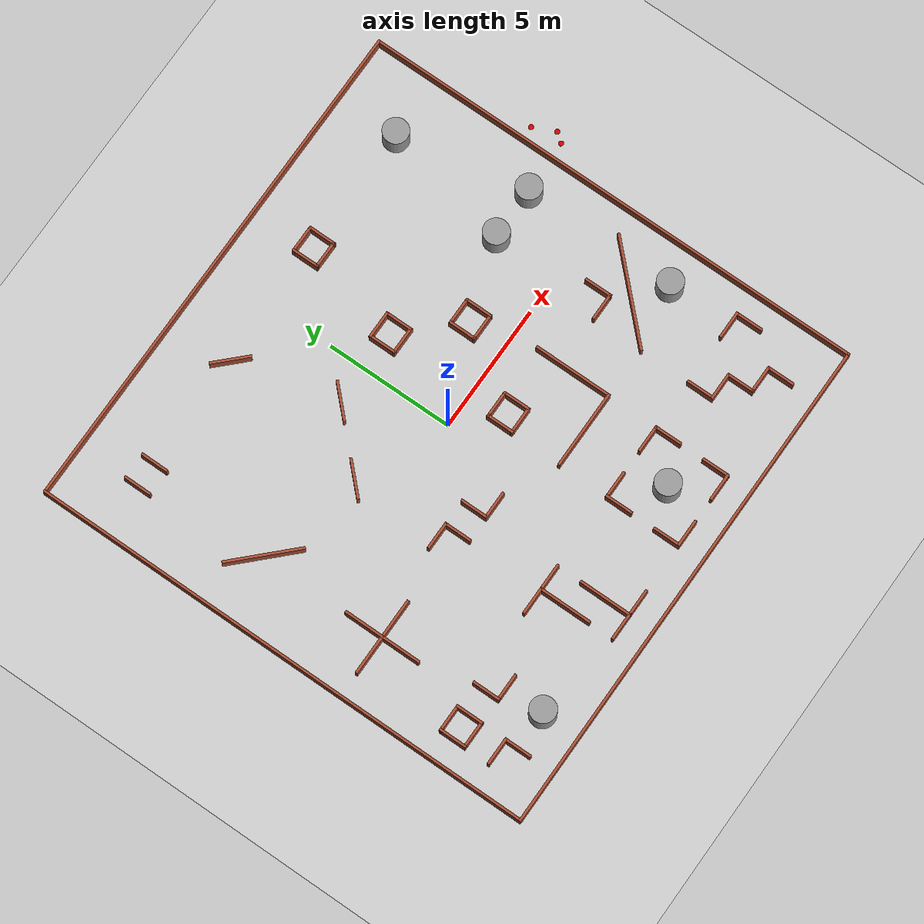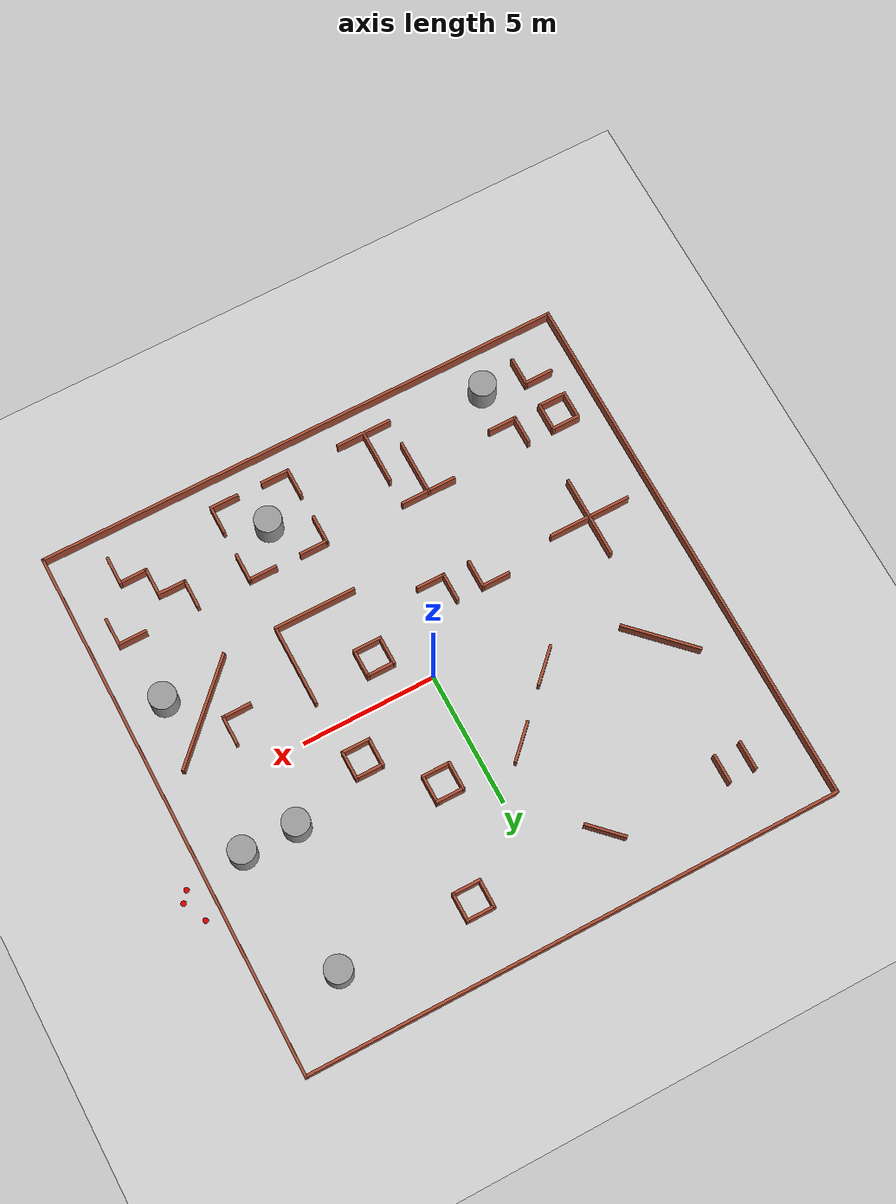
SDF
<sdf version="1.7">
 <world name="default">
  <model name="ground_plane">
   <static>1</static>
   <link name="link">
    <collision name="collision">
     <geometry><plane><normal>0 0 1</normal><size>100 100</size></plane></geometry>
     <surface>
      <contact><collide_bitmask>65535</collide_bitmask></contact>
      <friction><ode><mu>100</mu><mu2>50</mu2></ode></friction>
     </surface>
    </collision>
    <visual name="visual">
     <cast_shadows>0</cast_shadows>
     <geometry><plane><normal>0 0 1</normal><size>100 100</size></plane></geometry>
     <material>
      <script><uri>file://media/materials/scripts/gazebo.material</uri><name>Gazebo/Grey</name></script>
     </material>
    </visual>
   </link>
  </model>
  <model name="cur_mul">
   <link name="Wall_0">
    <collision name="Wall_0_Collision">
     <geometry><box><size>20.1 0.1 0.5</size></box></geometry>
     <pose>0 0 0.25 0 -0 0</pose>
    </collision>
    <visual name="Wall_0_Visual">
     <pose>0 0 0.25 0 -0 0</pose>
     <geometry><box><size>20.1 0.1 0.5</size></box></geometry>
     <material>
      <script><uri>file://media/materials/scripts/gazebo.material</uri><name>Gazebo/Bricks</name></script>
      <ambient>0.760784 0.662745 0.627451 1</ambient>
     </material>
     <meta><layer>0</layer></meta>
    </visual>
    <pose>0 10 0 0 -0 3.14159</pose>
   </link>
   <link name="Wall_1">
    <collision name="Wall_1_Collision">
     <geometry><box><size>20.1 0.1 0.5</size></box></geometry>
     <pose>0 0 0.25 0 -0 0</pose>
    </collision>
    <visual name="Wall_1_Visual">
     <pose>0 0 0.25 0 -0 0</pose>
     <geometry><box><size>20.1 0.1 0.5</size></box></geometry>
     <material>
      <script><uri>file://media/materials/scripts/gazebo.material</uri><name>Gazebo/Bricks</name></script>
      <ambient>0.760784 0.662745 0.627451 1</ambient>
     </material>
     <meta><layer>0</layer></meta>
    </visual>
    <pose>-10 0 0 0 -0 -1.5708</pose>
   </link>
   <link name="Wall_104">
    <collision name="Wall_104_Collision">
     <geometry><box><size>1.1 0.1 0.5</size></box></geometry>
     <pose>0 0 0.25 0 -0 0</pose>
    </collision>
    <visual name="Wall_104_Visual">
     <pose>0 0 0.25 0 -0 0</pose>
     <geometry><box><size>1.1 0.1 0.5</size></box></geometry>
     <material>
      <script><uri>file://media/materials/scripts/gazebo.material</uri><name>Gazebo/Bricks</name></script>
      <ambient>0.760784 0.662745 0.627451 1</ambient>
     </material>
     <meta><layer>0</layer></meta>
    </visual>
    <pose>-9 -6.5 0 0 -0 -1.5708</pose>
   </link>
   <link name="Wall_105">
    <collision name="Wall_105_Collision">
     <geometry><box><size>1.1 0.1 0.5</size></box></geometry>
     <pose>0 0 0.25 0 -0 0</pose>
    </collision>
    <visual name="Wall_105_Visual">
     <pose>0 0 0.25 0 -0 0</pose>
     <geometry><box><size>1.1 0.1 0.5</size></box></geometry>
     <material>
      <script><uri>file://media/materials/scripts/gazebo.material</uri><name>Gazebo/Bricks</name></script>
      <ambient>0.760784 0.662745 0.627451 1</ambient>
     </material>
     <meta><layer>0</layer></meta>
    </visual>
    <pose>-8.5 -7 0 0 -0 0</pose>
   </link>
   <link name="Wall_106">
    <collision name="Wall_106_Collision">
     <geometry><box><size>1.1 0.1 0.5</size></box></geometry>
     <pose>0 0 0.25 0 -0 0</pose>
    </collision>
    <visual name="Wall_106_Visual">
     <pose>0 0 0.25 0 -0 0</pose>
     <geometry><box><size>1.1 0.1 0.5</size></box></geometry>
     <material>
      <script><uri>file://media/materials/scripts/gazebo.material</uri><name>Gazebo/Bricks</name></script>
      <ambient>0.760784 0.662745 0.627451 1</ambient>
     </material>
     <meta><layer>0</layer></meta>
    </visual>
    <pose>-8 -6.5 0 0 -0 1.5708</pose>
   </link>
   <link name="Wall_107">
    <collision name="Wall_107_Collision">
     <geometry><box><size>1.1 0.1 0.5</size></box></geometry>
     <pose>0 0 0.25 0 -0 0</pose>
    </collision>
    <visual name="Wall_107_Visual">
     <pose>0 0 0.25 0 -0 0</pose>
     <geometry><box><size>1.1 0.1 0.5</size></box></geometry>
     <material>
      <script><uri>file://media/materials/scripts/gazebo.material</uri><name>Gazebo/Bricks</name></script>
      <ambient>0.760784 0.662745 0.627451 1</ambient>
     </material>
     <meta><layer>0</layer></meta>
    </visual>
    <pose>-8.5 -6 0 0 -0 3.14159</pose>
   </link>
   <link name="Wall_109">
    <collision name="Wall_109_Collision">
     <geometry><box><size>1.1 0.1 0.5</size></box></geometry>
     <pose>0 0 0.25 0 -0 0</pose>
    </collision>
    <visual name="Wall_109_Visual">
     <pose>0 0 0.25 0 -0 0</pose>
     <geometry><box><size>1.1 0.1 0.5</size></box></geometry>
     <material>
      <script><uri>file://media/materials/scripts/gazebo.material</uri><name>Gazebo/Bricks</name></script>
      <ambient>0.760784 0.662745 0.627451 1</ambient>
     </material>
     <meta><layer>0</layer></meta>
    </visual>
    <pose>-7 -6.5 0 0 -0 -1.5708</pose>
   </link>
   <link name="Wall_110">
    <collision name="Wall_110_Collision">
     <geometry><box><size>1.1 0.1 0.5</size></box></geometry>
     <pose>0 0 0.25 0 -0 0</pose>
    </collision>
    <visual name="Wall_110_Visual">
     <pose>0 0 0.25 0 -0 0</pose>
     <geometry><box><size>1.1 0.1 0.5</size></box></geometry>
     <material>
      <script><uri>file://media/materials/scripts/gazebo.material</uri><name>Gazebo/Bricks</name></script>
      <ambient>0.760784 0.662745 0.627451 1</ambient>
     </material>
     <meta><layer>0</layer></meta>
    </visual>
    <pose>-6.5 -7 0 0 -0 0</pose>
   </link>
   <link name="Wall_112">
    <collision name="Wall_112_Collision">
     <geometry><box><size>1.1 0.1 0.5</size></box></geometry>
     <pose>0 0 0.25 0 -0 0</pose>
    </collision>
    <visual name="Wall_112_Visual">
     <pose>0 0 0.25 0 -0 0</pose>
     <geometry><box><size>1.1 0.1 0.5</size></box></geometry>
     <material>
      <script><uri>file://media/materials/scripts/gazebo.material</uri><name>Gazebo/Bricks</name></script>
      <ambient>0.760784 0.662745 0.627451 1</ambient>
     </material>
     <meta><layer>0</layer></meta>
    </visual>
    <pose>-8.5 -8 0 0 -0 0</pose>
   </link>
   <link name="Wall_113">
    <collision name="Wall_113_Collision">
     <geometry><box><size>1.1 0.1 0.5</size></box></geometry>
     <pose>0 0 0.25 0 -0 0</pose>
    </collision>
    <visual name="Wall_113_Visual">
     <pose>0 0 0.25 0 -0 0</pose>
     <geometry><box><size>1.1 0.1 0.5</size></box></geometry>
     <material>
      <script><uri>file://media/materials/scripts/gazebo.material</uri><name>Gazebo/Bricks</name></script>
      <ambient>0.760784 0.662745 0.627451 1</ambient>
     </material>
     <meta><layer>0</layer></meta>
    </visual>
    <pose>-8 -8.5 0 0 -0 -1.5708</pose>
   </link>
   <link name="Wall_115">
    <collision name="Wall_115_Collision">
     <geometry><box><size>2.1 0.1 0.5</size></box></geometry>
     <pose>0 0 0.25 0 -0 0</pose>
    </collision>
    <visual name="Wall_115_Visual">
     <pose>0 0 0.25 0 -0 0</pose>
     <geometry><box><size>2.1 0.1 0.5</size></box></geometry>
     <material>
      <script><uri>file://media/materials/scripts/gazebo.material</uri><name>Gazebo/Bricks</name></script>
      <ambient>0.760784 0.662745 0.627451 1</ambient>
     </material>
     <meta><layer>0</layer></meta>
    </visual>
    <pose>-3 -6 0 0 -0 0</pose>
   </link>
   <link name="Wall_117">
    <collision name="Wall_117_Collision">
     <geometry><box><size>2.1 0.1 0.5</size></box></geometry>
     <pose>0 0 0.25 0 -0 0</pose>
    </collision>
    <visual name="Wall_117_Visual">
     <pose>0 0 0.25 0 -0 0</pose>
     <geometry><box><size>2.1 0.1 0.5</size></box></geometry>
     <material>
      <script><uri>file://media/materials/scripts/gazebo.material</uri><name>Gazebo/Bricks</name></script>
      <ambient>0.760784 0.662745 0.627451 1</ambient>
     </material>
     <meta><layer>0</layer></meta>
    </visual>
    <pose>-3 -7 0 0 -0 -1.5708</pose>
   </link>
   <link name="Wall_119">
    <collision name="Wall_119_Collision">
     <geometry><box><size>2.1 0.1 0.5</size></box></geometry>
     <pose>0 0 0.25 0 -0 0</pose>
    </collision>
    <visual name="Wall_119_Visual">
     <pose>0 0 0.25 0 -0 0</pose>
     <geometry><box><size>2.1 0.1 0.5</size></box></geometry>
     <material>
      <script><uri>file://media/materials/scripts/gazebo.material</uri><name>Gazebo/Bricks</name></script>
      <ambient>0.760784 0.662745 0.627451 1</ambient>
     </material>
     <meta><layer>0</layer></meta>
    </visual>
    <pose>-2 -8 0 0 -0 -1.5708</pose>
   </link>
   <link name="Wall_121">
    <collision name="Wall_121_Collision">
     <geometry><box><size>2.1 0.1 0.5</size></box></geometry>
     <pose>0 0 0.25 0 -0 0</pose>
    </collision>
    <visual name="Wall_121_Visual">
     <pose>0 0 0.25 0 -0 0</pose>
     <geometry><box><size>2.1 0.1 0.5</size></box></geometry>
     <material>
      <script><uri>file://media/materials/scripts/gazebo.material</uri><name>Gazebo/Bricks</name></script>
      <ambient>0.760784 0.662745 0.627451 1</ambient>
     </material>
     <meta><layer>0</layer></meta>
    </visual>
    <pose>-2 -9 0 0 -0 0</pose>
   </link>
   <link name="Wall_128">
    <collision name="Wall_128_Collision">
     <geometry><box><size>1.1 0.1 0.5</size></box></geometry>
     <pose>0 0 0.25 0 -0 0</pose>
    </collision>
    <visual name="Wall_128_Visual">
     <pose>0 0 0.25 0 -0 0</pose>
     <geometry><box><size>1.1 0.1 0.5</size></box></geometry>
     <material>
      <script><uri>file://media/materials/scripts/gazebo.material</uri><name>Gazebo/Bricks</name></script>
      <ambient>0.760784 0.662745 0.627451 1</ambient>
     </material>
     <meta><layer>0</layer></meta>
    </visual>
    <pose>6 -6.5 0 0 -0 -1.5708</pose>
   </link>
   <link name="Wall_129">
    <collision name="Wall_129_Collision">
     <geometry><box><size>1.1 0.1 0.5</size></box></geometry>
     <pose>0 0 0.25 0 -0 0</pose>
    </collision>
    <visual name="Wall_129_Visual">
     <pose>0 0 0.25 0 -0 0</pose>
     <geometry><box><size>1.1 0.1 0.5</size></box></geometry>
     <material>
      <script><uri>file://media/materials/scripts/gazebo.material</uri><name>Gazebo/Bricks</name></script>
      <ambient>0.760784 0.662745 0.627451 1</ambient>
     </material>
     <meta><layer>0</layer></meta>
    </visual>
    <pose>6.5 -7 0 0 -0 0</pose>
   </link>
   <link name="Wall_130">
    <collision name="Wall_130_Collision">
     <geometry><box><size>1.1 0.1 0.5</size></box></geometry>
     <pose>0 0 0.25 0 -0 0</pose>
    </collision>
    <visual name="Wall_130_Visual">
     <pose>0 0 0.25 0 -0 0</pose>
     <geometry><box><size>1.1 0.1 0.5</size></box></geometry>
     <material>
      <script><uri>file://media/materials/scripts/gazebo.material</uri><name>Gazebo/Bricks</name></script>
      <ambient>0.760784 0.662745 0.627451 1</ambient>
     </material>
     <meta><layer>0</layer></meta>
    </visual>
    <pose>7 -7.5 0 0 -0 -1.5708</pose>
   </link>
   <link name="Wall_131">
    <collision name="Wall_131_Collision">
     <geometry><box><size>1.1 0.1 0.5</size></box></geometry>
     <pose>0 0 0.25 0 -0 0</pose>
    </collision>
    <visual name="Wall_131_Visual">
     <pose>0 0 0.25 0 -0 0</pose>
     <geometry><box><size>1.1 0.1 0.5</size></box></geometry>
     <material>
      <script><uri>file://media/materials/scripts/gazebo.material</uri><name>Gazebo/Bricks</name></script>
      <ambient>0.760784 0.662745 0.627451 1</ambient>
     </material>
     <meta><layer>0</layer></meta>
    </visual>
    <pose>7.5 -8 0 0 -0 0</pose>
   </link>
   <link name="Wall_132">
    <collision name="Wall_132_Collision">
     <geometry><box><size>1.1 0.1 0.5</size></box></geometry>
     <pose>0 0 0.25 0 -0 0</pose>
    </collision>
    <visual name="Wall_132_Visual">
     <pose>0 0 0.25 0 -0 0</pose>
     <geometry><box><size>1.1 0.1 0.5</size></box></geometry>
     <material>
      <script><uri>file://media/materials/scripts/gazebo.material</uri><name>Gazebo/Bricks</name></script>
      <ambient>0.760784 0.662745 0.627451 1</ambient>
     </material>
     <meta><layer>0</layer></meta>
    </visual>
    <pose>8 -8.5 0 0 -0 -1.5708</pose>
   </link>
   <link name="Wall_134">
    <collision name="Wall_134_Collision">
     <geometry><box><size>1.1 0.1 0.5</size></box></geometry>
     <pose>0 0 0.25 0 -0 0</pose>
    </collision>
    <visual name="Wall_134_Visual">
     <pose>0 0 0.25 0 -0 0</pose>
     <geometry><box><size>1.1 0.1 0.5</size></box></geometry>
     <material>
      <script><uri>file://media/materials/scripts/gazebo.material</uri><name>Gazebo/Bricks</name></script>
      <ambient>0.760784 0.662745 0.627451 1</ambient>
     </material>
     <meta><layer>0</layer></meta>
    </visual>
    <pose>8.5 -6 0 0 -0 0</pose>
   </link>
   <link name="Wall_135">
    <collision name="Wall_135_Collision">
     <geometry><box><size>1.1 0.1 0.5</size></box></geometry>
     <pose>0 0 0.25 0 -0 0</pose>
    </collision>
    <visual name="Wall_135_Visual">
     <pose>0 0 0.25 0 -0 0</pose>
     <geometry><box><size>1.1 0.1 0.5</size></box></geometry>
     <material>
      <script><uri>file://media/materials/scripts/gazebo.material</uri><name>Gazebo/Bricks</name></script>
      <ambient>0.760784 0.662745 0.627451 1</ambient>
     </material>
     <meta><layer>0</layer></meta>
    </visual>
    <pose>9 -6.5 0 0 -0 -1.5708</pose>
   </link>
   <link name="Wall_138">
    <collision name="Wall_138_Collision">
     <geometry><box><size>1.1 0.1 0.5</size></box></geometry>
     <pose>0 0 0.25 0 -0 0</pose>
    </collision>
    <visual name="Wall_138_Visual">
     <pose>0 0 0.25 0 -0 0</pose>
     <geometry><box><size>1.1 0.1 0.5</size></box></geometry>
     <material>
      <script><uri>file://media/materials/scripts/gazebo.material</uri><name>Gazebo/Bricks</name></script>
      <ambient>0.760784 0.662745 0.627451 1</ambient>
     </material>
     <meta><layer>0</layer></meta>
    </visual>
    <pose>1 -6.5 0 0 -0 1.5708</pose>
   </link>
   <link name="Wall_139">
    <collision name="Wall_139_Collision">
     <geometry><box><size>1.1 0.1 0.5</size></box></geometry>
     <pose>0 0 0.25 0 -0 0</pose>
    </collision>
    <visual name="Wall_139_Visual">
     <pose>0 0 0.25 0 -0 0</pose>
     <geometry><box><size>1.1 0.1 0.5</size></box></geometry>
     <material>
      <script><uri>file://media/materials/scripts/gazebo.material</uri><name>Gazebo/Bricks</name></script>
      <ambient>0.760784 0.662745 0.627451 1</ambient>
     </material>
     <meta><layer>0</layer></meta>
    </visual>
    <pose>1.5 -6 0 0 -0 0</pose>
   </link>
   <link name="Wall_141">
    <collision name="Wall_141_Collision">
     <geometry><box><size>1.1 0.1 0.5</size></box></geometry>
     <pose>0 0 0.25 0 -0 0</pose>
    </collision>
    <visual name="Wall_141_Visual">
     <pose>0 0 0.25 0 -0 0</pose>
     <geometry><box><size>1.1 0.1 0.5</size></box></geometry>
     <material>
      <script><uri>file://media/materials/scripts/gazebo.material</uri><name>Gazebo/Bricks</name></script>
      <ambient>0.760784 0.662745 0.627451 1</ambient>
     </material>
     <meta><layer>0</layer></meta>
    </visual>
    <pose>3.5 -6 0 0 -0 0</pose>
   </link>
   <link name="Wall_142">
    <collision name="Wall_142_Collision">
     <geometry><box><size>1.1 0.1 0.5</size></box></geometry>
     <pose>0 0 0.25 0 -0 0</pose>
    </collision>
    <visual name="Wall_142_Visual">
     <pose>0 0 0.25 0 -0 0</pose>
     <geometry><box><size>1.1 0.1 0.5</size></box></geometry>
     <material>
      <script><uri>file://media/materials/scripts/gazebo.material</uri><name>Gazebo/Bricks</name></script>
      <ambient>0.760784 0.662745 0.627451 1</ambient>
     </material>
     <meta><layer>0</layer></meta>
    </visual>
    <pose>4 -6.5 0 0 -0 -1.5708</pose>
   </link>
   <link name="Wall_144">
    <collision name="Wall_144_Collision">
     <geometry><box><size>1.1 0.1 0.5</size></box></geometry>
     <pose>0 0 0.25 0 -0 0</pose>
    </collision>
    <visual name="Wall_144_Visual">
     <pose>0 0 0.25 0 -0 0</pose>
     <geometry><box><size>1.1 0.1 0.5</size></box></geometry>
     <material>
      <script><uri>file://media/materials/scripts/gazebo.material</uri><name>Gazebo/Bricks</name></script>
      <ambient>0.760784 0.662745 0.627451 1</ambient>
     </material>
     <meta><layer>0</layer></meta>
    </visual>
    <pose>1 -8.5 0 0 -0 -1.5708</pose>
   </link>
   <link name="Wall_145">
    <collision name="Wall_145_Collision">
     <geometry><box><size>1.1 0.1 0.5</size></box></geometry>
     <pose>0 0 0.25 0 -0 0</pose>
    </collision>
    <visual name="Wall_145_Visual">
     <pose>0 0 0.25 0 -0 0</pose>
     <geometry><box><size>1.1 0.1 0.5</size></box></geometry>
     <material>
      <script><uri>file://media/materials/scripts/gazebo.material</uri><name>Gazebo/Bricks</name></script>
      <ambient>0.760784 0.662745 0.627451 1</ambient>
     </material>
     <meta><layer>0</layer></meta>
    </visual>
    <pose>1.5 -9 0 0 -0 0</pose>
   </link>
   <link name="Wall_147">
    <collision name="Wall_147_Collision">
     <geometry><box><size>1.1 0.1 0.5</size></box></geometry>
     <pose>0 0 0.25 0 -0 0</pose>
    </collision>
    <visual name="Wall_147_Visual">
     <pose>0 0 0.25 0 -0 0</pose>
     <geometry><box><size>1.1 0.1 0.5</size></box></geometry>
     <material>
      <script><uri>file://media/materials/scripts/gazebo.material</uri><name>Gazebo/Bricks</name></script>
      <ambient>0.760784 0.662745 0.627451 1</ambient>
     </material>
     <meta><layer>0</layer></meta>
    </visual>
    <pose>4 -8.5 0 0 -0 -1.5708</pose>
   </link>
   <link name="Wall_148">
    <collision name="Wall_148_Collision">
     <geometry><box><size>1.1 0.1 0.5</size></box></geometry>
     <pose>0 0 0.25 0 -0 0</pose>
    </collision>
    <visual name="Wall_148_Visual">
     <pose>0 0 0.25 0 -0 0</pose>
     <geometry><box><size>1.1 0.1 0.5</size></box></geometry>
     <material>
      <script><uri>file://media/materials/scripts/gazebo.material</uri><name>Gazebo/Bricks</name></script>
      <ambient>0.760784 0.662745 0.627451 1</ambient>
     </material>
     <meta><layer>0</layer></meta>
    </visual>
    <pose>3.5 -9 0 0 -0 3.14159</pose>
   </link>
   <link name="Wall_151">
    <collision name="Wall_151_Collision">
     <geometry><box><size>4.34264 0.1 0.5</size></box></geometry>
     <pose>0 0 0.25 0 -0 0</pose>
    </collision>
    <visual name="Wall_151_Visual">
     <pose>0 0 0.25 0 -0 0</pose>
     <geometry><box><size>4.34264 0.1 0.5</size></box></geometry>
     <material>
      <script><uri>file://media/materials/scripts/gazebo.material</uri><name>Gazebo/Bricks</name></script>
      <ambient>0.760784 0.662745 0.627451 1</ambient>
     </material>
     <meta><layer>0</layer></meta>
    </visual>
    <pose>7.5 -2.5 0 0 -0 0.785398</pose>
   </link>
   <link name="Wall_153">
    <collision name="Wall_153_Collision">
     <geometry><box><size>1.1 0.1 0.5</size></box></geometry>
     <pose>0 0 0.25 0 -0 0</pose>
    </collision>
    <visual name="Wall_153_Visual">
     <pose>0 0 0.25 0 -0 0</pose>
     <geometry><box><size>1.1 0.1 0.5</size></box></geometry>
     <material>
      <script><uri>file://media/materials/scripts/gazebo.material</uri><name>Gazebo/Bricks</name></script>
      <ambient>0.760784 0.662745 0.627451 1</ambient>
     </material>
     <meta><layer>0</layer></meta>
    </visual>
    <pose>7 -1.5 0 0 -0 -1.5708</pose>
   </link>
   <link name="Wall_154">
    <collision name="Wall_154_Collision">
     <geometry><box><size>1.1 0.1 0.5</size></box></geometry>
     <pose>0 0 0.25 0 -0 0</pose>
    </collision>
    <visual name="Wall_154_Visual">
     <pose>0 0 0.25 0 -0 0</pose>
     <geometry><box><size>1.1 0.1 0.5</size></box></geometry>
     <material>
      <script><uri>file://media/materials/scripts/gazebo.material</uri><name>Gazebo/Bricks</name></script>
      <ambient>0.760784 0.662745 0.627451 1</ambient>
     </material>
     <meta><layer>0</layer></meta>
    </visual>
    <pose>6.5 -2 0 0 -0 3.14159</pose>
   </link>
   <link name="Wall_156">
    <collision name="Wall_156_Collision">
     <geometry><box><size>3.1 0.1 0.5</size></box></geometry>
     <pose>0 0 0.25 0 -0 0</pose>
    </collision>
    <visual name="Wall_156_Visual">
     <pose>0 0 0.25 0 -0 0</pose>
     <geometry><box><size>3.1 0.1 0.5</size></box></geometry>
     <material>
      <script><uri>file://media/materials/scripts/gazebo.material</uri><name>Gazebo/Bricks</name></script>
      <ambient>0.760784 0.662745 0.627451 1</ambient>
     </material>
     <meta><layer>0</layer></meta>
    </visual>
    <pose>2.5 -4 0 0 -0 0</pose>
   </link>
   <link name="Wall_157">
    <collision name="Wall_157_Collision">
     <geometry><box><size>3.1 0.1 0.5</size></box></geometry>
     <pose>0 0 0.25 0 -0 0</pose>
    </collision>
    <visual name="Wall_157_Visual">
     <pose>0 0 0.25 0 -0 0</pose>
     <geometry><box><size>3.1 0.1 0.5</size></box></geometry>
     <material>
      <script><uri>file://media/materials/scripts/gazebo.material</uri><name>Gazebo/Bricks</name></script>
      <ambient>0.760784 0.662745 0.627451 1</ambient>
     </material>
     <meta><layer>0</layer></meta>
    </visual>
    <pose>4 -2.5 0 0 -0 1.5708</pose>
   </link>
   <link name="Wall_2">
    <collision name="Wall_2_Collision">
     <geometry><box><size>20.1 0.1 0.5</size></box></geometry>
     <pose>0 0 0.25 0 -0 0</pose>
    </collision>
    <visual name="Wall_2_Visual">
     <pose>0 0 0.25 0 -0 0</pose>
     <geometry><box><size>20.1 0.1 0.5</size></box></geometry>
     <material>
      <script><uri>file://media/materials/scripts/gazebo.material</uri><name>Gazebo/Bricks</name></script>
      <ambient>0.760784 0.662745 0.627451 1</ambient>
     </material>
     <meta><layer>0</layer></meta>
    </visual>
    <pose>0 -10 0 0 -0 0</pose>
   </link>
   <link name="Wall_3">
    <collision name="Wall_3_Collision">
     <geometry><box><size>20.1 0.1 0.5</size></box></geometry>
     <pose>0 0 0.25 0 -0 0</pose>
    </collision>
    <visual name="Wall_3_Visual">
     <pose>0 0 0.25 0 -0 0</pose>
     <geometry><box><size>20.1 0.1 0.5</size></box></geometry>
     <material>
      <script><uri>file://media/materials/scripts/gazebo.material</uri><name>Gazebo/Bricks</name></script>
      <ambient>0.760784 0.662745 0.627451 1</ambient>
     </material>
     <meta><layer>0</layer></meta>
    </visual>
    <pose>10 0 0 0 -0 1.5708</pose>
   </link>
   <link name="Wall_45">
    <collision name="Wall_45_Collision">
     <geometry><box><size>1.1 0.1 0.5</size></box></geometry>
     <pose>0 0 0.25 0 -0 0</pose>
    </collision>
    <visual name="Wall_45_Visual">
     <pose>0 0 0.25 0 -0 0</pose>
     <geometry><box><size>1.1 0.1 0.5</size></box></geometry>
     <material>
      <script><uri>file://media/materials/scripts/gazebo.material</uri><name>Gazebo/Bricks</name></script>
      <ambient>0.760784 0.662745 0.627451 1</ambient>
     </material>
     <meta><layer>0</layer></meta>
    </visual>
    <pose>-8 7.5 0 0 -0 -1.5708</pose>
   </link>
   <link name="Wall_47">
    <collision name="Wall_47_Collision">
     <geometry><box><size>1.1 0.1 0.5</size></box></geometry>
     <pose>0 0 0.25 0 -0 0</pose>
    </collision>
    <visual name="Wall_47_Visual">
     <pose>0 0 0.25 0 -0 0</pose>
     <geometry><box><size>1.1 0.1 0.5</size></box></geometry>
     <material>
      <script><uri>file://media/materials/scripts/gazebo.material</uri><name>Gazebo/Bricks</name></script>
      <ambient>0.760784 0.662745 0.627451 1</ambient>
     </material>
     <meta><layer>0</layer></meta>
    </visual>
    <pose>-7 7.5 0 0 -0 -1.5708</pose>
   </link>
   <link name="Wall_49">
    <collision name="Wall_49_Collision">
     <geometry><box><size>1.51421 0.1 0.5</size></box></geometry>
     <pose>0 0 0.25 0 -0 0</pose>
    </collision>
    <visual name="Wall_49_Visual">
     <pose>0 0 0.25 0 -0 0</pose>
     <geometry><box><size>1.51421 0.1 0.5</size></box></geometry>
     <material>
      <script><uri>file://media/materials/scripts/gazebo.material</uri><name>Gazebo/Bricks</name></script>
      <ambient>0.760784 0.662745 0.627451 1</ambient>
     </material>
     <meta><layer>0</layer></meta>
    </visual>
    <pose>-2.5 7.5 0 0 -0 -0.785398</pose>
   </link>
   <link name="Wall_51">
    <collision name="Wall_51_Collision">
     <geometry><box><size>1.1 0.1 0.5</size></box></geometry>
     <pose>0 0 0.25 0 -0 0</pose>
    </collision>
    <visual name="Wall_51_Visual">
     <pose>0 0 0.25 0 -0 0</pose>
     <geometry><box><size>1.1 0.1 0.5</size></box></geometry>
     <material>
      <script><uri>file://media/materials/scripts/gazebo.material</uri><name>Gazebo/Bricks</name></script>
      <ambient>0.760784 0.662745 0.627451 1</ambient>
     </material>
     <meta><layer>0</layer></meta>
    </visual>
    <pose>2.5 7 0 0 -0 0</pose>
   </link>
   <link name="Wall_52">
    <collision name="Wall_52_Collision">
     <geometry><box><size>1.1 0.1 0.5</size></box></geometry>
     <pose>0 0 0.25 0 -0 0</pose>
    </collision>
    <visual name="Wall_52_Visual">
     <pose>0 0 0.25 0 -0 0</pose>
     <geometry><box><size>1.1 0.1 0.5</size></box></geometry>
     <material>
      <script><uri>file://media/materials/scripts/gazebo.material</uri><name>Gazebo/Bricks</name></script>
      <ambient>0.760784 0.662745 0.627451 1</ambient>
     </material>
     <meta><layer>0</layer></meta>
    </visual>
    <pose>3 7.5 0 0 -0 1.5708</pose>
   </link>
   <link name="Wall_53">
    <collision name="Wall_53_Collision">
     <geometry><box><size>1.1 0.1 0.5</size></box></geometry>
     <pose>0 0 0.25 0 -0 0</pose>
    </collision>
    <visual name="Wall_53_Visual">
     <pose>0 0 0.25 0 -0 0</pose>
     <geometry><box><size>1.1 0.1 0.5</size></box></geometry>
     <material>
      <script><uri>file://media/materials/scripts/gazebo.material</uri><name>Gazebo/Bricks</name></script>
      <ambient>0.760784 0.662745 0.627451 1</ambient>
     </material>
     <meta><layer>0</layer></meta>
    </visual>
    <pose>2.5 8 0 0 -0 3.14159</pose>
   </link>
   <link name="Wall_54">
    <collision name="Wall_54_Collision">
     <geometry><box><size>1.1 0.1 0.5</size></box></geometry>
     <pose>0 0 0.25 0 -0 0</pose>
    </collision>
    <visual name="Wall_54_Visual">
     <pose>0 0 0.25 0 -0 0</pose>
     <geometry><box><size>1.1 0.1 0.5</size></box></geometry>
     <material>
      <script><uri>file://media/materials/scripts/gazebo.material</uri><name>Gazebo/Bricks</name></script>
      <ambient>0.760784 0.662745 0.627451 1</ambient>
     </material>
     <meta><layer>0</layer></meta>
    </visual>
    <pose>2 7.5 0 0 -0 -1.5708</pose>
   </link>
   <link name="Wall_56">
    <collision name="Wall_56_Collision">
     <geometry><box><size>2.92843 0.1 0.5</size></box></geometry>
     <pose>0 0 0.25 0 -0 0</pose>
    </collision>
    <visual name="Wall_56_Visual">
     <pose>0 0 0.25 0 -0 0</pose>
     <geometry><box><size>2.92843 0.1 0.5</size></box></geometry>
     <material>
      <script><uri>file://media/materials/scripts/gazebo.material</uri><name>Gazebo/Bricks</name></script>
      <ambient>0.760784 0.662745 0.627451 1</ambient>
     </material>
     <meta><layer>0</layer></meta>
    </visual>
    <pose>-7.5 2.5 0 0 -0 -0.785398</pose>
   </link>
   <link name="Wall_58">
    <collision name="Wall_58_Collision">
     <geometry><box><size>1.51421 0.1 0.5</size></box></geometry>
     <pose>0 0 0.25 0 -0 0</pose>
    </collision>
    <visual name="Wall_58_Visual">
     <pose>0 0 0.25 0 -0 0</pose>
     <geometry><box><size>1.51421 0.1 0.5</size></box></geometry>
     <material>
      <script><uri>file://media/materials/scripts/gazebo.material</uri><name>Gazebo/Bricks</name></script>
      <ambient>0.760784 0.662745 0.627451 1</ambient>
     </material>
     <meta><layer>0</layer></meta>
    </visual>
    <pose>-1.5 3.5 0 0 -0 0.785398</pose>
   </link>
   <link name="Wall_60">
    <collision name="Wall_60_Collision">
     <geometry><box><size>1.51421 0.1 0.5</size></box></geometry>
     <pose>0 0 0.25 0 -0 0</pose>
    </collision>
    <visual name="Wall_60_Visual">
     <pose>0 0 0.25 0 -0 0</pose>
     <geometry><box><size>1.51421 0.1 0.5</size></box></geometry>
     <material>
      <script><uri>file://media/materials/scripts/gazebo.material</uri><name>Gazebo/Bricks</name></script>
      <ambient>0.760784 0.662745 0.627451 1</ambient>
     </material>
     <meta><layer>0</layer></meta>
    </visual>
    <pose>-3.5 1.5 0 0 -0 0.785398</pose>
   </link>
   <link name="Wall_62">
    <collision name="Wall_62_Collision">
     <geometry><box><size>1.1 0.1 0.5</size></box></geometry>
     <pose>0 0 0.25 0 -0 0</pose>
    </collision>
    <visual name="Wall_62_Visual">
     <pose>0 0 0.25 0 -0 0</pose>
     <geometry><box><size>1.1 0.1 0.5</size></box></geometry>
     <material>
      <script><uri>file://media/materials/scripts/gazebo.material</uri><name>Gazebo/Bricks</name></script>
      <ambient>0.760784 0.662745 0.627451 1</ambient>
     </material>
     <meta><layer>0</layer></meta>
    </visual>
    <pose>2 3.5 0 0 -0 -1.5708</pose>
   </link>
   <link name="Wall_63">
    <collision name="Wall_63_Collision">
     <geometry><box><size>1.1 0.1 0.5</size></box></geometry>
     <pose>0 0 0.25 0 -0 0</pose>
    </collision>
    <visual name="Wall_63_Visual">
     <pose>0 0 0.25 0 -0 0</pose>
     <geometry><box><size>1.1 0.1 0.5</size></box></geometry>
     <material>
      <script><uri>file://media/materials/scripts/gazebo.material</uri><name>Gazebo/Bricks</name></script>
      <ambient>0.760784 0.662745 0.627451 1</ambient>
     </material>
     <meta><layer>0</layer></meta>
    </visual>
    <pose>1.5 3 0 0 -0 3.14159</pose>
   </link>
   <link name="Wall_64">
    <collision name="Wall_64_Collision">
     <geometry><box><size>1.1 0.1 0.5</size></box></geometry>
     <pose>0 0 0.25 0 -0 0</pose>
    </collision>
    <visual name="Wall_64_Visual">
     <pose>0 0 0.25 0 -0 0</pose>
     <geometry><box><size>1.1 0.1 0.5</size></box></geometry>
     <material>
      <script><uri>file://media/materials/scripts/gazebo.material</uri><name>Gazebo/Bricks</name></script>
      <ambient>0.760784 0.662745 0.627451 1</ambient>
     </material>
     <meta><layer>0</layer></meta>
    </visual>
    <pose>1 3.5 0 0 -0 1.5708</pose>
   </link>
   <link name="Wall_65">
    <collision name="Wall_65_Collision">
     <geometry><box><size>1.1 0.1 0.5</size></box></geometry>
     <pose>0 0 0.25 0 -0 0</pose>
    </collision>
    <visual name="Wall_65_Visual">
     <pose>0 0 0.25 0 -0 0</pose>
     <geometry><box><size>1.1 0.1 0.5</size></box></geometry>
     <material>
      <script><uri>file://media/materials/scripts/gazebo.material</uri><name>Gazebo/Bricks</name></script>
      <ambient>0.760784 0.662745 0.627451 1</ambient>
     </material>
     <meta><layer>0</layer></meta>
    </visual>
    <pose>1.5 4 0 0 -0 0</pose>
   </link>
   <link name="Wall_67">
    <collision name="Wall_67_Collision">
     <geometry><box><size>1.1 0.1 0.5</size></box></geometry>
     <pose>0 0 0.25 0 -0 0</pose>
    </collision>
    <visual name="Wall_67_Visual">
     <pose>0 0 0.25 0 -0 0</pose>
     <geometry><box><size>1.1 0.1 0.5</size></box></geometry>
     <material>
      <script><uri>file://media/materials/scripts/gazebo.material</uri><name>Gazebo/Bricks</name></script>
      <ambient>0.760784 0.662745 0.627451 1</ambient>
     </material>
     <meta><layer>0</layer></meta>
    </visual>
    <pose>4 1.5 0 0 -0 -1.5708</pose>
   </link>
   <link name="Wall_68">
    <collision name="Wall_68_Collision">
     <geometry><box><size>1.1 0.1 0.5</size></box></geometry>
     <pose>0 0 0.25 0 -0 0</pose>
    </collision>
    <visual name="Wall_68_Visual">
     <pose>0 0 0.25 0 -0 0</pose>
     <geometry><box><size>1.1 0.1 0.5</size></box></geometry>
     <material>
      <script><uri>file://media/materials/scripts/gazebo.material</uri><name>Gazebo/Bricks</name></script>
      <ambient>0.760784 0.662745 0.627451 1</ambient>
     </material>
     <meta><layer>0</layer></meta>
    </visual>
    <pose>3.5 1 0 0 -0 3.14159</pose>
   </link>
   <link name="Wall_69">
    <collision name="Wall_69_Collision">
     <geometry><box><size>1.1 0.1 0.5</size></box></geometry>
     <pose>0 0 0.25 0 -0 0</pose>
    </collision>
    <visual name="Wall_69_Visual">
     <pose>0 0 0.25 0 -0 0</pose>
     <geometry><box><size>1.1 0.1 0.5</size></box></geometry>
     <material>
      <script><uri>file://media/materials/scripts/gazebo.material</uri><name>Gazebo/Bricks</name></script>
      <ambient>0.760784 0.662745 0.627451 1</ambient>
     </material>
     <meta><layer>0</layer></meta>
    </visual>
    <pose>3 1.5 0 0 -0 1.5708</pose>
   </link>
   <link name="Wall_70">
    <collision name="Wall_70_Collision">
     <geometry><box><size>1.1 0.1 0.5</size></box></geometry>
     <pose>0 0 0.25 0 -0 0</pose>
    </collision>
    <visual name="Wall_70_Visual">
     <pose>0 0 0.25 0 -0 0</pose>
     <geometry><box><size>1.1 0.1 0.5</size></box></geometry>
     <material>
      <script><uri>file://media/materials/scripts/gazebo.material</uri><name>Gazebo/Bricks</name></script>
      <ambient>0.760784 0.662745 0.627451 1</ambient>
     </material>
     <meta><layer>0</layer></meta>
    </visual>
    <pose>3.5 2 0 0 -0 0</pose>
   </link>
   <link name="Wall_72">
    <collision name="Wall_72_Collision">
     <geometry><box><size>3.1 0.1 0.5</size></box></geometry>
     <pose>0 0 0.25 0 -0 0</pose>
    </collision>
    <visual name="Wall_72_Visual">
     <pose>0 0 0.25 0 -0 0</pose>
     <geometry><box><size>3.1 0.1 0.5</size></box></geometry>
     <material>
      <script><uri>file://media/materials/scripts/gazebo.material</uri><name>Gazebo/Bricks</name></script>
      <ambient>0.760784 0.662745 0.627451 1</ambient>
     </material>
     <meta><layer>0</layer></meta>
    </visual>
    <pose>-7.5 -2.5 0 0 -0 0</pose>
   </link>
   <link name="Wall_74">
    <collision name="Wall_74_Collision">
     <geometry><box><size>3.1 0.1 0.5</size></box></geometry>
     <pose>0 0 0.25 0 -0 0</pose>
    </collision>
    <visual name="Wall_74_Visual">
     <pose>0 0 0.25 0 -0 0</pose>
     <geometry><box><size>3.1 0.1 0.5</size></box></geometry>
     <material>
      <script><uri>file://media/materials/scripts/gazebo.material</uri><name>Gazebo/Bricks</name></script>
      <ambient>0.760784 0.662745 0.627451 1</ambient>
     </material>
     <meta><layer>0</layer></meta>
    </visual>
    <pose>-7.5 -2.5 0 0 -0 -1.5708</pose>
   </link>
   <link name="Wall_76">
    <collision name="Wall_76_Collision">
     <geometry><box><size>1.1 0.1 0.5</size></box></geometry>
     <pose>0 0 0.25 0 -0 0</pose>
    </collision>
    <visual name="Wall_76_Visual">
     <pose>0 0 0.25 0 -0 0</pose>
     <geometry><box><size>1.1 0.1 0.5</size></box></geometry>
     <material>
      <script><uri>file://media/materials/scripts/gazebo.material</uri><name>Gazebo/Bricks</name></script>
      <ambient>0.760784 0.662745 0.627451 1</ambient>
     </material>
     <meta><layer>0</layer></meta>
    </visual>
    <pose>-3.5 -2 0 0 -0 0</pose>
   </link>
   <link name="Wall_77">
    <collision name="Wall_77_Collision">
     <geometry><box><size>1.1 0.1 0.5</size></box></geometry>
     <pose>0 0 0.25 0 -0 0</pose>
    </collision>
    <visual name="Wall_77_Visual">
     <pose>0 0 0.25 0 -0 0</pose>
     <geometry><box><size>1.1 0.1 0.5</size></box></geometry>
     <material>
      <script><uri>file://media/materials/scripts/gazebo.material</uri><name>Gazebo/Bricks</name></script>
      <ambient>0.760784 0.662745 0.627451 1</ambient>
     </material>
     <meta><layer>0</layer></meta>
    </visual>
    <pose>-3 -2.5 0 0 -0 -1.5708</pose>
   </link>
   <link name="Wall_79">
    <collision name="Wall_79_Collision">
     <geometry><box><size>1.1 0.1 0.5</size></box></geometry>
     <pose>0 0 0.25 0 -0 0</pose>
    </collision>
    <visual name="Wall_79_Visual">
     <pose>0 0 0.25 0 -0 0</pose>
     <geometry><box><size>1.1 0.1 0.5</size></box></geometry>
     <material>
      <script><uri>file://media/materials/scripts/gazebo.material</uri><name>Gazebo/Bricks</name></script>
      <ambient>0.760784 0.662745 0.627451 1</ambient>
     </material>
     <meta><layer>0</layer></meta>
    </visual>
    <pose>-2 -2.5 0 0 -0 -1.5708</pose>
   </link>
   <link name="Wall_80">
    <collision name="Wall_80_Collision">
     <geometry><box><size>1.1 0.1 0.5</size></box></geometry>
     <pose>0 0 0.25 0 -0 0</pose>
    </collision>
    <visual name="Wall_80_Visual">
     <pose>0 0 0.25 0 -0 0</pose>
     <geometry><box><size>1.1 0.1 0.5</size></box></geometry>
     <material>
      <script><uri>file://media/materials/scripts/gazebo.material</uri><name>Gazebo/Bricks</name></script>
      <ambient>0.760784 0.662745 0.627451 1</ambient>
     </material>
     <meta><layer>0</layer></meta>
    </visual>
    <pose>-1.5 -3 0 0 -0 0</pose>
   </link>
   <link name="Wall_82">
    <collision name="Wall_82_Collision">
     <geometry><box><size>1.1 0.1 0.5</size></box></geometry>
     <pose>0 0 0.25 0 -0 0</pose>
    </collision>
    <visual name="Wall_82_Visual">
     <pose>0 0 0.25 0 -0 0</pose>
     <geometry><box><size>1.1 0.1 0.5</size></box></geometry>
     <material>
      <script><uri>file://media/materials/scripts/gazebo.material</uri><name>Gazebo/Bricks</name></script>
      <ambient>0.760784 0.662745 0.627451 1</ambient>
     </material>
     <meta><layer>0</layer></meta>
    </visual>
    <pose>2 -1.5 0 0 -0 -1.5708</pose>
   </link>
   <link name="Wall_83">
    <collision name="Wall_83_Collision">
     <geometry><box><size>1.1 0.1 0.5</size></box></geometry>
     <pose>0 0 0.25 0 -0 0</pose>
    </collision>
    <visual name="Wall_83_Visual">
     <pose>0 0 0.25 0 -0 0</pose>
     <geometry><box><size>1.1 0.1 0.5</size></box></geometry>
     <material>
      <script><uri>file://media/materials/scripts/gazebo.material</uri><name>Gazebo/Bricks</name></script>
      <ambient>0.760784 0.662745 0.627451 1</ambient>
     </material>
     <meta><layer>0</layer></meta>
    </visual>
    <pose>1.5 -2 0 0 -0 3.14159</pose>
   </link>
   <link name="Wall_84">
    <collision name="Wall_84_Collision">
     <geometry><box><size>1.1 0.1 0.5</size></box></geometry>
     <pose>0 0 0.25 0 -0 0</pose>
    </collision>
    <visual name="Wall_84_Visual">
     <pose>0 0 0.25 0 -0 0</pose>
     <geometry><box><size>1.1 0.1 0.5</size></box></geometry>
     <material>
      <script><uri>file://media/materials/scripts/gazebo.material</uri><name>Gazebo/Bricks</name></script>
      <ambient>0.760784 0.662745 0.627451 1</ambient>
     </material>
     <meta><layer>0</layer></meta>
    </visual>
    <pose>1 -1.5 0 0 -0 1.5708</pose>
   </link>
   <link name="Wall_85">
    <collision name="Wall_85_Collision">
     <geometry><box><size>1.1 0.1 0.5</size></box></geometry>
     <pose>0 0 0.25 0 -0 0</pose>
    </collision>
    <visual name="Wall_85_Visual">
     <pose>0 0 0.25 0 -0 0</pose>
     <geometry><box><size>1.1 0.1 0.5</size></box></geometry>
     <material>
      <script><uri>file://media/materials/scripts/gazebo.material</uri><name>Gazebo/Bricks</name></script>
      <ambient>0.760784 0.662745 0.627451 1</ambient>
     </material>
     <meta><layer>0</layer></meta>
    </visual>
    <pose>1.5 -1 0 0 -0 0</pose>
   </link>
   <static>1</static>
  </model>
  <model name="unit_cylinder">
   <pose>7.5 7.5 0.499998 3e-06 -2e-06 0</pose>
   <link name="link">
    <inertial>
     <mass>1</mass>
     <inertia><ixx>0.145833</ixx><ixy>0</ixy><ixz>0</ixz><iyy>0.145833</iyy><iyz>0</iyz><izz>0.125</izz></inertia>
    </inertial>
    <collision name="collision">
     <geometry><cylinder><radius>0.5</radius><length>1</length></cylinder></geometry>
    </collision>
    <visual name="visual">
     <geometry><cylinder><radius>0.5</radius><length>1</length></cylinder></geometry>
     <material>
      <script><name>Gazebo/Grey</name><uri>file://media/materials/scripts/gazebo.material</uri></script>
     </material>
    </visual>
   </link>
  </model>
  <model name="unit_cylinder_2">
   <pose>2.5 -7.5 0.499994 -3e-06 -2e-06 0</pose>
   <link name="link">
    <inertial>
     <mass>1</mass>
     <inertia><ixx>0.145833</ixx><ixy>0</ixy><ixz>0</ixz><iyy>0.145833</iyy><iyz>0</iyz><izz>0.125</izz></inertia>
    </inertial>
    <collision name="collision">
     <geometry><cylinder><radius>0.5</radius><length>1</length></cylinder></geometry>
    </collision>
    <visual name="visual">
     <geometry><cylinder><radius>0.5</radius><length>1</length></cylinder></geometry>
     <material>
      <script><name>Gazebo/Grey</name><uri>file://media/materials/scripts/gazebo.material</uri></script>
     </material>
    </visual>
   </link>
  </model>
  <model name="unit_cylinder_3">
   <pose>8.5 -3.5 0.499998 3e-06 4e-06 -0</pose>
   <link name="link">
    <inertial>
     <mass>1</mass>
     <inertia><ixx>0.145833</ixx><ixy>0</ixy><ixz>0</ixz><iyy>0.145833</iyy><iyz>0</iyz><izz>0.125</izz></inertia>
    </inertial>
    <collision name="collision">
     <geometry><cylinder><radius>0.5</radius><length>1</length></cylinder></geometry>
    </collision>
    <visual name="visual">
     <geometry><cylinder><radius>0.5</radius><length>1</length></cylinder></geometry>
     <material>
      <script><name>Gazebo/Grey</name><uri>file://media/materials/scripts/gazebo.material</uri></script>
     </material>
    </visual>
   </link>
  </model>
  <model name="unit_cylinder_4">
   <pose>-6.5 -8.5 0.499994 -4e-06 -3e-06 -0</pose>
   <link name="link">
    <inertial>
     <mass>1</mass>
     <inertia><ixx>0.145833</ixx><ixy>0</ixy><ixz>0</ixz><iyy>0.145833</iyy><iyz>0</iyz><izz>0.125</izz></inertia>
    </inertial>
    <collision name="collision">
     <geometry><cylinder><radius>0.5</radius><length>1</length></cylinder></geometry>
    </collision>
    <visual name="visual">
     <geometry><cylinder><radius>0.5</radius><length>1</length></cylinder></geometry>
     <material>
      <script><name>Gazebo/Grey</name><uri>file://media/materials/scripts/gazebo.material</uri></script>
     </material>
    </visual>
   </link>
  </model>
  <model name="unit_cylinder_0">
   <pose>6.5 2.5 0.499994 -3e-06 -1e-06 -0</pose>
   <link name="link">
    <inertial>
     <mass>1</mass>
     <inertia><ixx>0.145833</ixx><ixy>0</ixy><ixz>0</ixz><iyy>0.145833</iyy><iyz>0</iyz><izz>0.125</izz></inertia>
    </inertial>
    <collision name="collision">
     <geometry><cylinder><radius>0.5</radius><length>1</length></cylinder></geometry>
    </collision>
    <visual name="visual">
     <geometry><cylinder><radius>0.5</radius><length>1</length></cylinder></geometry>
     <material>
      <script><name>Gazebo/Grey</name><uri>file://media/materials/scripts/gazebo.material</uri></script>
     </material>
    </visual>
   </link>
  </model>
  <model name="unit_cylinder_1">
   <pose>8.5 2.5 0.499994 -3e-06 -1e-06 -0</pose>
   <link name="link">
    <inertial>
     <mass>1</mass>
     <inertia><ixx>0.145833</ixx><ixy>0</ixy><ixz>0</ixz><iyy>0.145833</iyy><iyz>0</iyz><izz>0.125</izz></inertia>
    </inertial>
    <collision name="collision">
     <geometry><cylinder><radius>0.5</radius><length>1</length></cylinder></geometry>
    </collision>
    <visual name="visual">
     <geometry><cylinder><radius>0.5</radius><length>1</length></cylinder></geometry>
     <material>
      <script><name>Gazebo/Grey</name><uri>file://media/materials/scripts/gazebo.material</uri></script>
     </material>
    </visual>
   </link>
  </model>
  <model name="target_red_clone_1">
   <link name="link">
    <inertial>
     <mass>1</mass>
     <inertia><ixx>0.145833</ixx><ixy>0</ixy><ixz>0</ixz><iyy>0.145833</iyy><iyz>0</iyz><izz>0.125</izz></inertia>
    </inertial>
    <visual name="visual">
     <geometry><cylinder><radius>0.1</radius><length>0.01</length></cylinder></geometry>
     <material>
      <script><name>Gazebo/Grey</name><uri>file://media/materials/scripts/gazebo.material</uri></script>
      <shader type="pixel"><normal_map>__default__</normal_map></shader>
      <ambient>0.8 0 0 1</ambient>
      <diffuse>0.8 0 0 1</diffuse>
      <specular>0.8 0 0 1</specular>
      <emissive>0 0 0 1</emissive>
     </material>
    </visual>
    <collision name="collision">
     <geometry><cylinder><radius>0.1</radius><length>0.01</length></cylinder></geometry>
     <surface>
      <friction>
       <ode><mu>1</mu><mu2>1</mu2><fdir1>0 0 0</fdir1><slip1>0</slip1><slip2>0</slip2></ode>
       <torsional>
        <coefficient>1</coefficient>
        <patch_radius>0</patch_radius>
        <surface_radius>0</surface_radius>
        <use_patch_radius>1</use_patch_radius>
        <ode><slip>0</slip></ode>
       </torsional>
      </friction>
      <bounce><restitution_coefficient>0</restitution_coefficient><threshold>1e+06</threshold></bounce>
      <contact>
       <collide_without_contact>0</collide_without_contact>
       <collide_without_contact_bitmask>1</collide_without_contact_bitmask>
       <collide_bitmask>1</collide_bitmask>
       <ode>
        <soft_cfm>0</soft_cfm>
        <soft_erp>0.2</soft_erp>
        <kp>1e+13</kp>
        <kd>1</kd>
        <max_vel>0.01</max_vel>
        <min_depth>0</min_depth>
       </ode>
       <bullet>
        <split_impulse>1</split_impulse>
        <split_impulse_penetration_threshold>-0.01</split_impulse_penetration_threshold>
        <soft_cfm>0</soft_cfm>
        <soft_erp>0.2</soft_erp>
        <kp>1e+13</kp>
        <kd>1</kd>
       </bullet>
      </contact>
     </surface>
    </collision>
   </link>
   <static>0</static>
   <pose>10.7149 2.64165 0 0 -0 0</pose>
  </model>
  <model name="target_red_clone_3">
   <link name="link">
    <inertial>
     <mass>1</mass>
     <inertia><ixx>0.145833</ixx><ixy>0</ixy><ixz>0</ixz><iyy>0.145833</iyy><iyz>0</iyz><izz>0.125</izz></inertia>
    </inertial>
    <visual name="visual">
     <geometry><cylinder><radius>0.1</radius><length>0.01</length></cylinder></geometry>
     <material>
      <script><name>Gazebo/Grey</name><uri>file://media/materials/scripts/gazebo.material</uri></script>
      <shader type="pixel"><normal_map>__default__</normal_map></shader>
      <ambient>0.8 0 0 1</ambient>
      <diffuse>0.8 0 0 1</diffuse>
      <specular>0.8 0 0 1</specular>
      <emissive>0 0 0 1</emissive>
     </material>
    </visual>
    <collision name="collision">
     <geometry><cylinder><radius>0.1</radius><length>0.01</length></cylinder></geometry>
     <surface>
      <friction>
       <ode><mu>1</mu><mu2>1</mu2><fdir1>0 0 0</fdir1><slip1>0</slip1><slip2>0</slip2></ode>
       <torsional>
        <coefficient>1</coefficient>
        <patch_radius>0</patch_radius>
        <surface_radius>0</surface_radius>
        <use_patch_radius>1</use_patch_radius>
        <ode><slip>0</slip></ode>
       </torsional>
      </friction>
      <bounce><restitution_coefficient>0</restitution_coefficient><threshold>1e+06</threshold></bounce>
      <contact>
       <collide_without_contact>0</collide_without_contact>
       <collide_without_contact_bitmask>1</collide_without_contact_bitmask>
       <collide_bitmask>1</collide_bitmask>
       <ode>
        <soft_cfm>0</soft_cfm>
        <soft_erp>0.2</soft_erp>
        <kp>1e+13</kp>
        <kd>1</kd>
        <max_vel>0.01</max_vel>
        <min_depth>0</min_depth>
       </ode>
       <bullet>
        <split_impulse>1</split_impulse>
        <split_impulse_penetration_threshold>-0.01</split_impulse_penetration_threshold>
        <soft_cfm>0</soft_cfm>
        <soft_erp>0.2</soft_erp>
        <kp>1e+13</kp>
        <kd>1</kd>
       </bullet>
      </contact>
     </surface>
    </collision>
   </link>
   <static>0</static>
   <pose>11 3 0 0 -0 0</pose>
  </model>
  <model name="target_red_clone_6">
   <link name="link">
    <inertial>
     <mass>1</mass>
     <inertia><ixx>0.145833</ixx><ixy>0</ixy><ixz>0</ixz><iyy>0.145833</iyy><iyz>0</iyz><izz>0.125</izz></inertia>
    </inertial>
    <visual name="visual">
     <geometry><cylinder><radius>0.1</radius><length>0.01</length></cylinder></geometry>
     <material>
      <script><name>Gazebo/Grey</name><uri>file://media/materials/scripts/gazebo.material</uri></script>
      <shader type="pixel"><normal_map>__default__</normal_map></shader>
      <ambient>0.8 0 0 1</ambient>
      <diffuse>0.8 0 0 1</diffuse>
      <specular>0.8 0 0 1</specular>
      <emissive>0 0 0 1</emissive>
     </material>
    </visual>
    <collision name="collision">
     <geometry><cylinder><radius>0.1</radius><length>0.01</length></cylinder></geometry>
     <surface>
      <friction>
       <ode><mu>1</mu><mu2>1</mu2><fdir1>0 0 0</fdir1><slip1>0</slip1><slip2>0</slip2></ode>
       <torsional>
        <coefficient>1</coefficient>
        <patch_radius>0</patch_radius>
        <surface_radius>0</surface_radius>
        <use_patch_radius>1</use_patch_radius>
        <ode><slip>0</slip></ode>
       </torsional>
      </friction>
      <bounce><restitution_coefficient>0</restitution_coefficient><threshold>1e+06</threshold></bounce>
      <contact>
       <collide_without_contact>0</collide_without_contact>
       <collide_without_contact_bitmask>1</collide_without_contact_bitmask>
       <collide_bitmask>1</collide_bitmask>
       <ode>
        <soft_cfm>0</soft_cfm>
        <soft_erp>0.2</soft_erp>
        <kp>1e+13</kp>
        <kd>1</kd>
        <max_vel>0.01</max_vel>
        <min_depth>0</min_depth>
       </ode>
       <bullet>
        <split_impulse>1</split_impulse>
        <split_impulse_penetration_threshold>-0.01</split_impulse_penetration_threshold>
        <soft_cfm>0</soft_cfm>
        <soft_erp>0.2</soft_erp>
        <kp>1e+13</kp>
        <kd>1</kd>
       </bullet>
      </contact>
     </surface>
    </collision>
   </link>
   <static>0</static>
   <pose>10.6034 3.85595 0 0 -0 0</pose>
  </model>
 </world>
</sdf>
